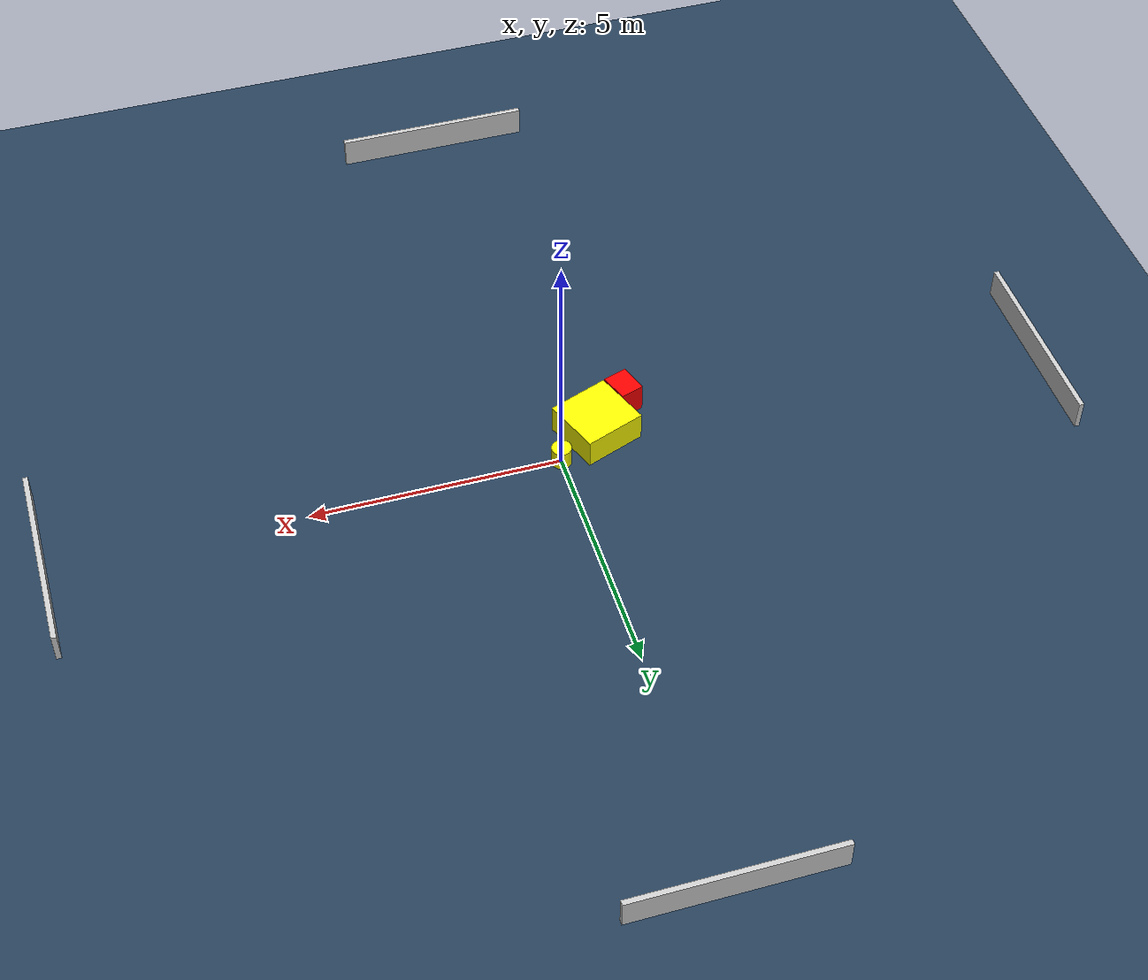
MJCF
<?xml version="1.0" ?>
<mujoco model="generated_environment">
  <option timestep="0.01" integrator="RK4" cone="elliptic"/>
  <default>
    <geom density="1"/>
  </default>
  <asset>
    <texture builtin="gradient" height="3072" name="skybox" rgb1="0.3 0.5 0.7" rgb2="0 0 0" type="skybox" width="512"/>
    <texture builtin="checker" height="300" name="groundplane" rgb1="0.2 0.3 0.4" rgb2="0.1 0.2 0.3" type="2d" width="300"/>
    <material name="groundplane" reflectance="0.2" texrepeat="5 5" texture="groundplane"/>
  </asset>
  <worldbody>
    <light dir="0 0 -1" directional="true" pos="0 0 1.5"/>
    <geom condim="3" friction="0.5 0.005 0.001" material="groundplane" name="floor" pos="0 0 0" size="0 0 0.05" type="plane"/>
    <body name="walls">
      <geom name="wall_1" condim="4" pos="-10.0 0.0 0.3" rgba="0.800000011920929 0.800000011920929 0.800000011920929 1.0" size="0.05 2.0 0.3" type="box"/>
      <geom name="wall_2" condim="4" pos="10.0 0.0 0.3" rgba="0.800000011920929 0.800000011920929 0.800000011920929 1.0" size="0.05 2.0 0.3" type="box"/>
      <geom name="wall_3" condim="4" pos="0.0 -10.0 0.3" rgba="0.800000011920929 0.800000011920929 0.800000011920929 1.0" size="2.0 0.05 0.3" type="box"/>
      <geom name="wall_4" condim="4" pos="0.0 10.0 0.3" rgba="0.800000011920929 0.800000011920929 0.800000011920929 1.0" size="2.0 0.05 0.3" type="box"/>
    </body>
    <body name="robot">
      <joint name="joint_x" type="slide" pos="0 0 0" axis="1 0 0"/>
      <joint name="joint_y" type="slide" pos="0 0 0" axis="0 1 0"/>
      <geom name="robot" type="cylinder" pos="0.0 0.0 0.2" size="0.2 0.2 0.0" mass="5.0" friction="1.0 0.005 0.0001" condim="4" rgba="1.0 1.0 0.0 1.0"/>
    </body>
    <body name="obstacle_1_movable">
      <geom name="obstacle_1_movable" condim="4" pos="-0.8765646064799263 -0.5394485308285913 0.3" euler="0 0 200.58706176831652" friction="0.0 0.005 0.001" rgba="1.0 1.0 0.0 1.0" size="0.6351509530934518 0.6027345815227947 0.3" type="box" mass="0.1"/>
      <joint type="free"/>
    </body>
    <body name="obstacle_2_static">
      <geom name="obstacle_2_static" condim="4" pos="-1.6165617670963395 -1.1406116889738556 0.3" euler="0 0 198.6420709585999" friction="0.0 0.005 0.001" rgba="1.0 0.0 0.0 1.0" size="0.2467810315234711 0.2965255810347461 0.3" type="box"/>
    </body>
  </worldbody>
  <actuator>
    <motor name="actuator_x" joint="joint_x" gear="1" ctrlrange="-1 1"/>
    <motor name="actuator_y" joint="joint_y" gear="1" ctrlrange="-1 1"/>
  </actuator>
</mujoco>
